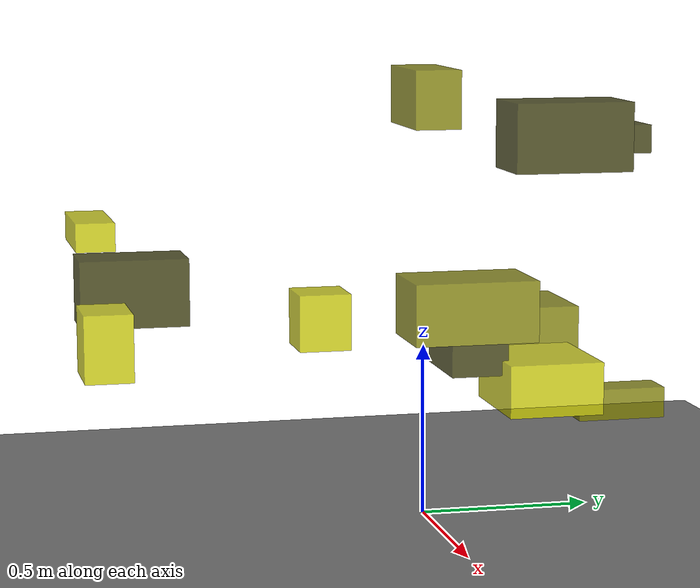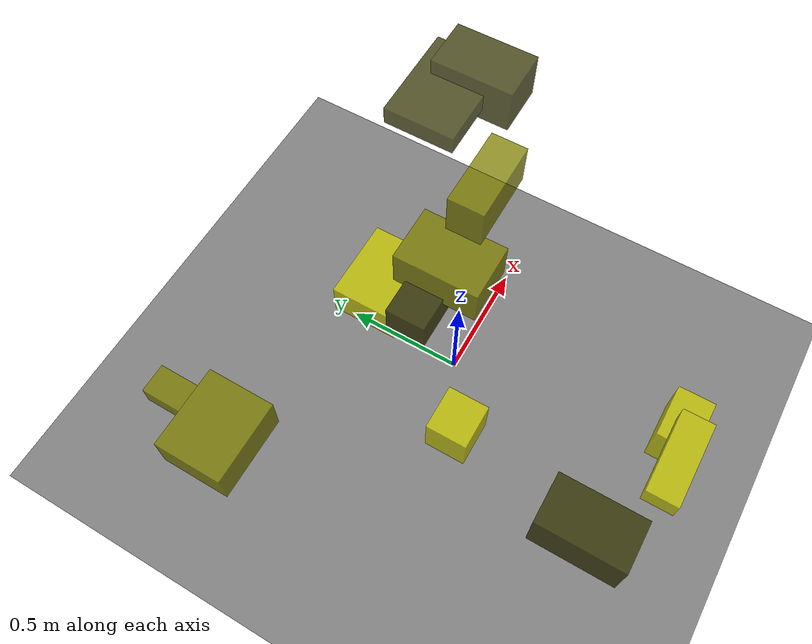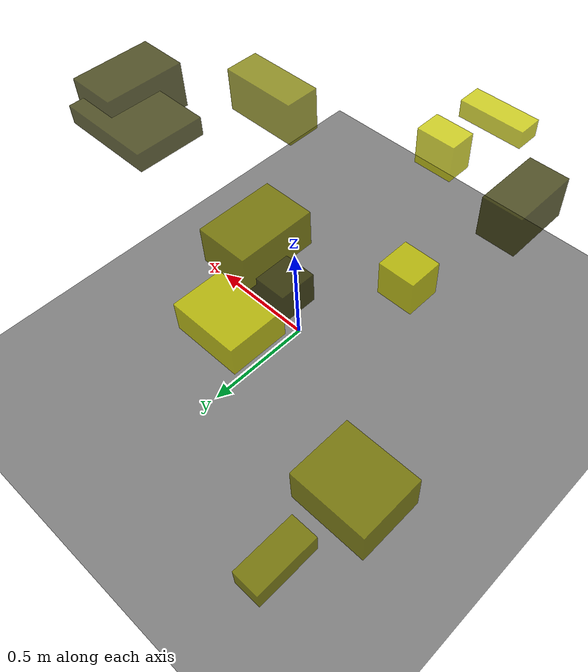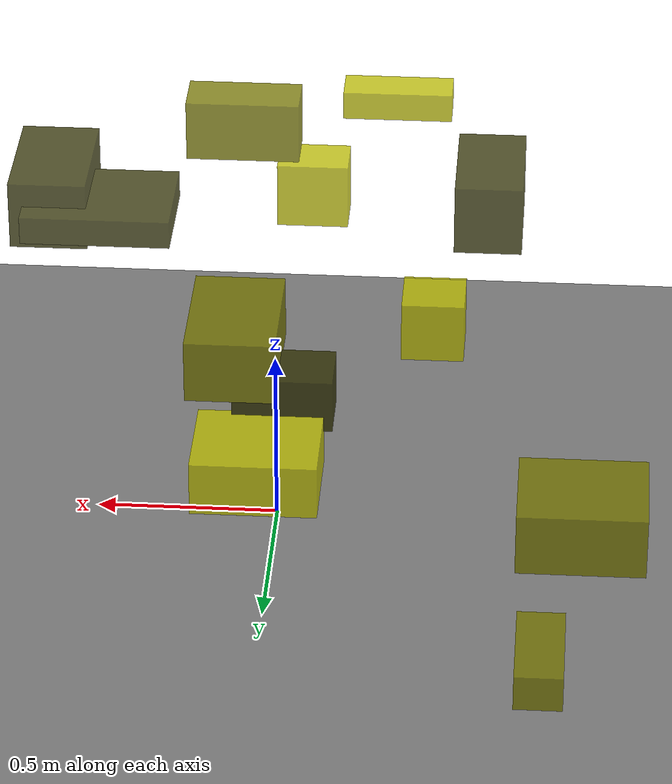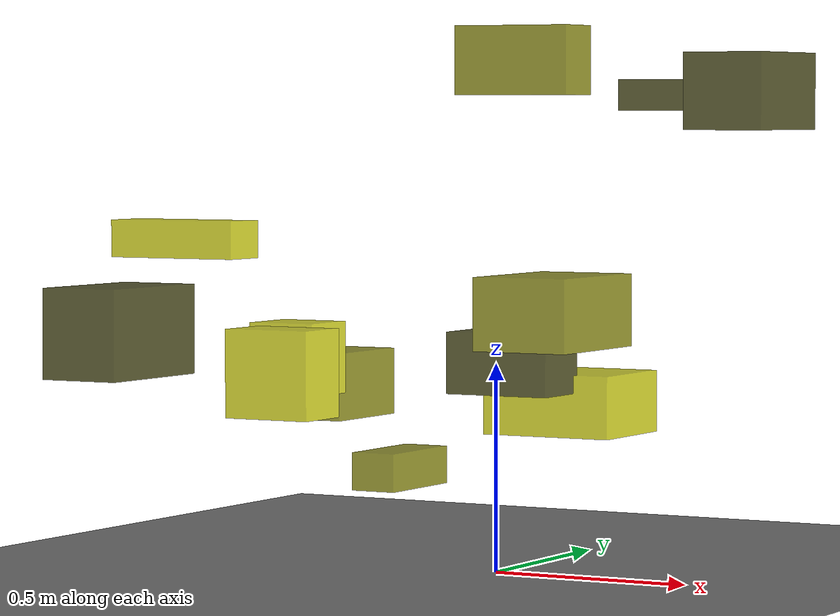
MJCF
<?xml version="1.0"?>
<mujoco model="obstacle_scene">
  <compiler angle="radian" coordinate="local"/>
  <option timestep="0.001" gravity="0 0 -9.81"/>

  <asset>
    <material name="obstacle_mat" rgba="0.8 0.8 0.0 0.8"/>
    <material name="ground_mat" rgba="0.5 0.5 0.5 1"/>
  </asset>

  <worldbody>
    <!-- Ground plane -->
    <geom name="ground" type="plane" size="3 3 0.1" material="ground_mat"/>

    <!-- Obstacles -->
    <body name="obstacle_0" pos="0.551577 0.241169 1.151275">
      <geom name="obs_0" type="box" size="0.099774 0.158743 0.091317" rgba="0.2 0.2 0.0 0.8"/>
    </body>
    <body name="obstacle_1" pos="0.077898 -0.015367 1.224337">
      <geom name="obs_1" type="box" size="0.148357 0.064648 0.081785" rgba="0.5 0.5 0.0 0.8"/>
    </body>
    <body name="obstacle_2" pos="0.022675 0.348902 0.385097">
      <geom name="obs_2" type="box" size="0.169719 0.138707 0.076144" rgba="0.8 0.8 0.0 0.8"/>
    </body>
    <body name="obstacle_3" pos="-0.035050 0.145412 0.493063">
      <geom name="obs_3" type="box" size="0.135802 0.083606 0.075365" rgba="0.2 0.2 0.0 0.8"/>
    </body>
    <body name="obstacle_4" pos="-0.848498 0.556576 0.390120">
      <geom name="obs_4" type="box" size="0.170728 0.143048 0.086876" rgba="0.5 0.5 0.0 0.8"/>
    </body>
    <body name="obstacle_5" pos="-0.422635 -0.217229 0.514083">
      <geom name="obs_5" type="box" size="0.086378 0.079551 0.086090" rgba="0.8 0.8 0.0 0.8"/>
    </body>
    <body name="obstacle_6" pos="-0.558278 -0.777996 0.603519">
      <geom name="obs_6" type="box" size="0.096531 0.165254 0.103289" rgba="0.2 0.2 0.0 0.8"/>
    </body>
    <body name="obstacle_7" pos="-0.750608 0.858941 0.140807">
      <geom name="obs_7" type="box" size="0.064194 0.146671 0.050596" rgba="0.5 0.5 0.0 0.8"/>
    </body>
    <body name="obstacle_8" pos="-0.284432 -0.928543 0.823749">
      <geom name="obs_8" type="box" size="0.155540 0.055951 0.041100" rgba="0.8 0.8 0.0 0.8"/>
    </body>
    <body name="obstacle_9" pos="0.424126 0.324138 1.142151">
      <geom name="obs_9" type="box" size="0.192595 0.136562 0.037014" rgba="0.2 0.2 0.0 0.8"/>
    </body>
    <body name="obstacle_10" pos="0.099683 0.103057 0.621948">
      <geom name="obs_10" type="box" size="0.122182 0.179666 0.088113" rgba="0.5 0.5 0.0 0.8"/>
    </body>
    <body name="obstacle_11" pos="-0.040652 -0.916901 0.534611">
      <geom name="obs_11" type="box" size="0.102508 0.069290 0.097014" rgba="0.8 0.8 0.0 0.8"/>
    </body>
  </worldbody>
</mujoco>
